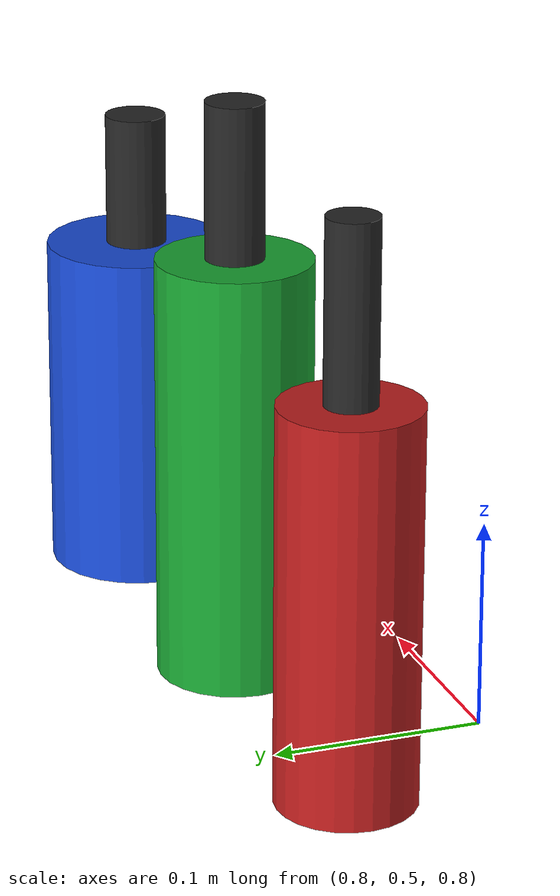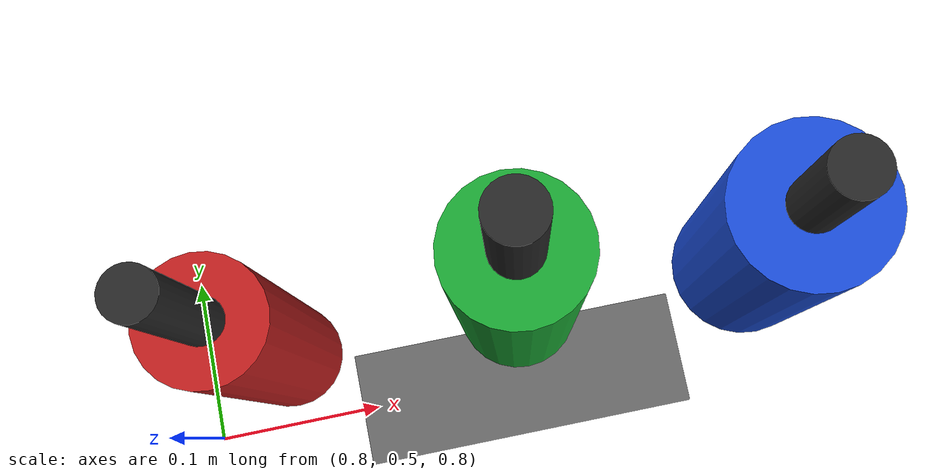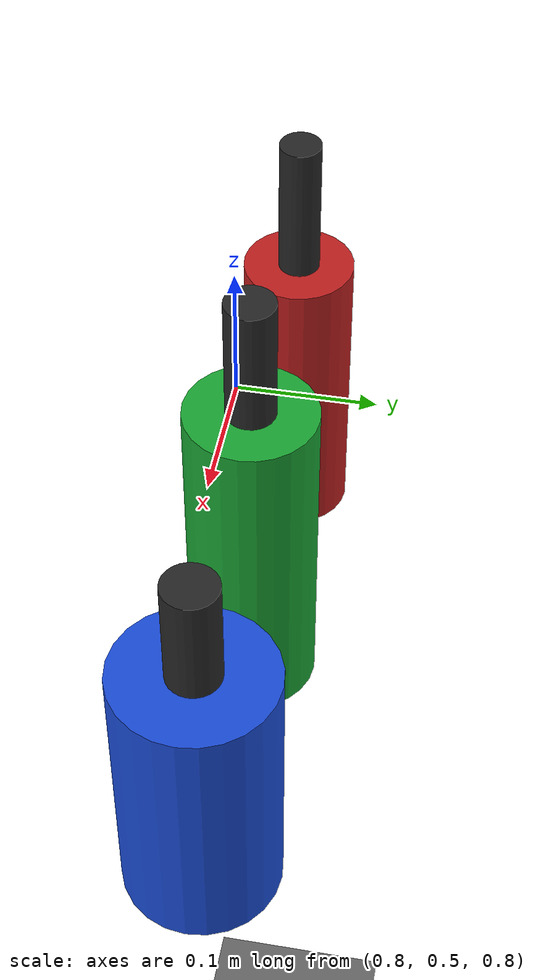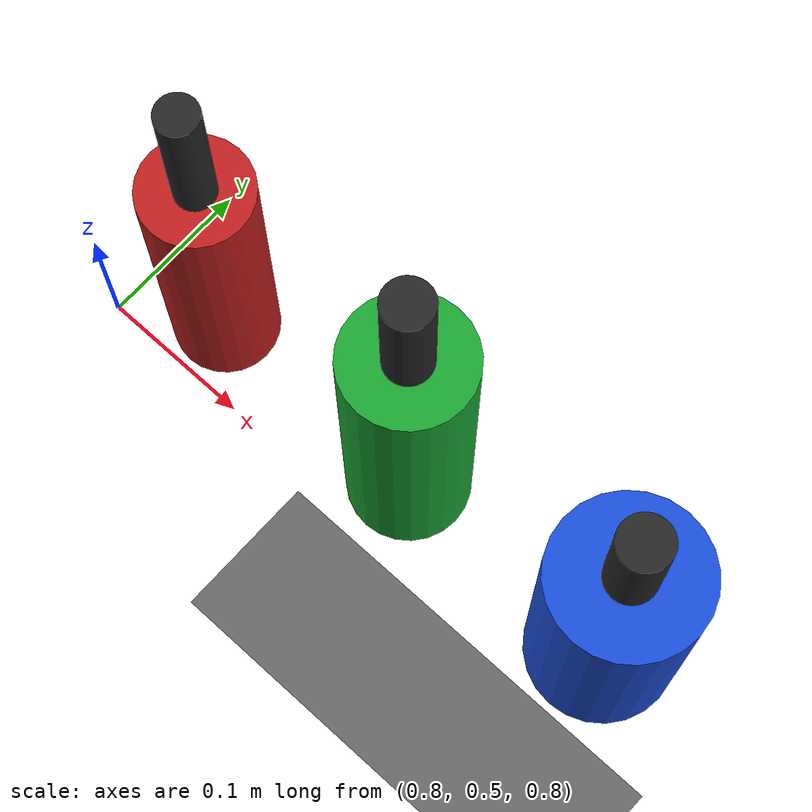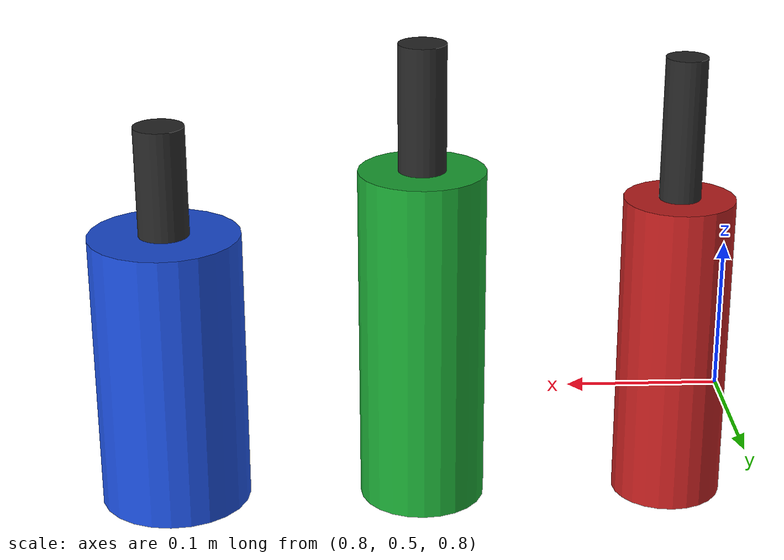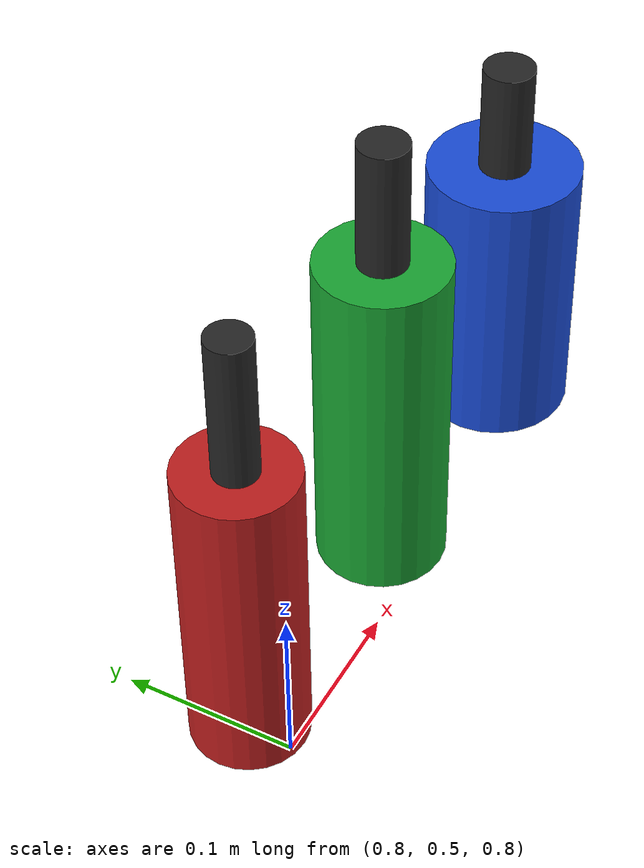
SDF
<sdf version="1.9">
 <world name="workcell_world">
  <physics name="1ms" type="ignored">
   <max_step_size>0.001</max_step_size>
   <real_time_factor>1.0</real_time_factor>
   <dart><collision_detector>bullet</collision_detector></dart>
  </physics>
  <plugin filename="gz-sim-physics-system" name="gz::sim::systems::Physics"/>
  <plugin filename="gz-sim-user-commands-system" name="gz::sim::systems::UserCommands"/>
  <plugin filename="gz-sim-scene-broadcaster-system" name="gz::sim::systems::SceneBroadcaster"/>
  <plugin filename="gz-sim-sensors-system" name="gz::sim::systems::Sensors">
   <render_engine>ogre2</render_engine>
  </plugin>
  <plugin filename="gz-sim-contact-system" name="gz::sim::systems::Contact"/>
  <light type="directional" name="sun">
   <cast_shadows>false</cast_shadows>
   <pose>0 0 10 0 0 0</pose>
   <diffuse>0.8 0.8 0.8 1</diffuse>
   <specular>0.2 0.2 0.2 1</specular>
   <attenuation>
    <range>1000</range>
    <constant>0.9</constant>
    <linear>0.01</linear>
    <quadratic>0.001</quadratic>
   </attenuation>
   <direction>-0.5 0.1 -0.9</direction>
  </light>
  <model name="ground_plane">
   <static>true</static>
   <link name="link">
    <collision name="collision">
     <geometry><plane><normal>0 0 1</normal><size>100 100</size></plane></geometry>
    </collision>
    <visual name="visual">
     <geometry><plane><normal>0 0 1</normal><size>100 100</size></plane></geometry>
     <material><ambient>0.3 0.3 0.3 1</ambient><diffuse>0.4 0.4 0.4 1</diffuse></material>
    </visual>
   </link>
  </model>
  <model name="overhead_camera">
   <static>true</static>
   <pose>0.84 0.42 1.85 0 1.5708 1.5708</pose>
   <link name="link">
    <sensor name="overhead_rgb" type="camera">
     <always_on>true</always_on>
     <update_rate>10</update_rate>
     <topic>/camera/overhead/image_raw</topic>
     <camera>
      <horizontal_fov>1.2566</horizontal_fov>
      <image><width>640</width><height>480</height><format>R8G8B8</format></image>
      <clip><near>0.2</near><far>3</far></clip>
     </camera>
    </sensor>
   </link>
  </model>
  <model name="side_camera">
   <static>true</static>
   <pose>0.55 -0.35 1.3 0 0.4538 1.2311</pose>
   <link name="link">
    <sensor name="side_rgb" type="camera">
     <always_on>true</always_on>
     <update_rate>10</update_rate>
     <topic>/camera/side/image_raw</topic>
     <camera>
      <horizontal_fov>1.2</horizontal_fov>
      <image><width>640</width><height>480</height><format>R8G8B8</format></image>
      <clip><near>0.2</near><far>5</far></clip>
     </camera>
    </sensor>
   </link>
  </model>
  <include><uri>model://debug_bottle_red</uri><name>bottle_3</name><pose>0.84 0.55 0.75 0 0 0</pose></include>
  <include><uri>model://debug_bottle_green</uri><name>bottle_4</name><pose>1 0.55 0.75 0 0 0</pose></include>
  <include><uri>model://debug_bottle_blue</uri><name>bottle_5</name><pose>1.16 0.55 0.75 0 0 0</pose></include>
 </world>
</sdf>

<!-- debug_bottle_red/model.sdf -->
<!-- GENERATED by bartender_gazebo/scripts/make_bartender_scene.py; tall slim debug bottle.
     Edit the generator, not this file. Colors are debug aids only. -->
<sdf version="1.9">
  <model name="debug_bottle_red">
    <!-- Link origin is the centre of the bottle's base, like the whiskey
         and cola models, so a standing pose is always z = table top. -->
    <link name="body">
      <inertial>
        <pose>0 0 0.1 0 0 0</pose>
        <mass>0.45</mass>
        <inertia>
          <ixx>1.637813e-03</ixx>
          <iyy>1.637813e-03</iyy>
          <izz>2.756250e-04</izz>
          <ixy>0</ixy>
          <ixz>0</ixz>
          <iyz>0</iyz>
        </inertia>
      </inertial>
      <collision name="body_collision">
        <pose>0 0 0.1 0 0 0</pose>
        <geometry>
          <cylinder>
            <radius>0.035</radius>
            <length>0.2</length>
          </cylinder>
        </geometry>
        <surface>
          <friction>
            <ode>
              <mu>0.9</mu>
              <mu2>0.9</mu2>
            </ode>
          </friction>
        </surface>
      </collision>
      <visual name="body_visual">
        <pose>0 0 0.1 0 0 0</pose>
        <geometry>
          <cylinder>
            <radius>0.035</radius>
            <length>0.2</length>
          </cylinder>
        </geometry>
        <material>
          <ambient>0.75 0.12 0.12 1</ambient>
          <diffuse>0.75 0.12 0.12 1</diffuse>
          <specular>0.2 0.2 0.2 0.3</specular>
        </material>
      </visual>
      <collision name="neck_collision">
        <pose>0 0 0.245 0 0 0</pose>
        <geometry>
          <cylinder>
            <radius>0.013</radius>
            <length>0.09</length>
          </cylinder>
        </geometry>
        <surface>
          <friction>
            <ode>
              <mu>0.9</mu>
              <mu2>0.9</mu2>
            </ode>
          </friction>
        </surface>
      </collision>
      <visual name="neck_visual">
        <pose>0 0 0.245 0 0 0</pose>
        <geometry>
          <cylinder>
            <radius>0.013</radius>
            <length>0.09</length>
          </cylinder>
        </geometry>
        <material>
          <ambient>0.15 0.15 0.15 1</ambient>
          <diffuse>0.15 0.15 0.15 1</diffuse>
          <specular>0.3 0.3 0.3 0.3</specular>
        </material>
      </visual>
    </link>
  </model>
</sdf>

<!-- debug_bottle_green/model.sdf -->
<!-- GENERATED by bartender_gazebo/scripts/make_bartender_scene.py; standard debug bottle.
     Edit the generator, not this file. Colors are debug aids only. -->
<sdf version="1.9">
  <model name="debug_bottle_green">
    <!-- Link origin is the centre of the bottle's base, like the whiskey
         and cola models, so a standing pose is always z = table top. -->
    <link name="body">
      <inertial>
        <pose>0 0 0.11 0 0 0</pose>
        <mass>0.6</mass>
        <inertia>
          <ixx>2.660000e-03</ixx>
          <iyy>2.660000e-03</iyy>
          <izz>4.800000e-04</izz>
          <ixy>0</ixy>
          <ixz>0</ixz>
          <iyz>0</iyz>
        </inertia>
      </inertial>
      <collision name="body_collision">
        <pose>0 0 0.11 0 0 0</pose>
        <geometry>
          <cylinder>
            <radius>0.04</radius>
            <length>0.22</length>
          </cylinder>
        </geometry>
        <surface>
          <friction>
            <ode>
              <mu>0.9</mu>
              <mu2>0.9</mu2>
            </ode>
          </friction>
        </surface>
      </collision>
      <visual name="body_visual">
        <pose>0 0 0.11 0 0 0</pose>
        <geometry>
          <cylinder>
            <radius>0.04</radius>
            <length>0.22</length>
          </cylinder>
        </geometry>
        <material>
          <ambient>0.1 0.65 0.2 1</ambient>
          <diffuse>0.1 0.65 0.2 1</diffuse>
          <specular>0.2 0.2 0.2 0.3</specular>
        </material>
      </visual>
      <collision name="neck_collision">
        <pose>0 0 0.26 0 0 0</pose>
        <geometry>
          <cylinder>
            <radius>0.015</radius>
            <length>0.08</length>
          </cylinder>
        </geometry>
        <surface>
          <friction>
            <ode>
              <mu>0.9</mu>
              <mu2>0.9</mu2>
            </ode>
          </friction>
        </surface>
      </collision>
      <visual name="neck_visual">
        <pose>0 0 0.26 0 0 0</pose>
        <geometry>
          <cylinder>
            <radius>0.015</radius>
            <length>0.08</length>
          </cylinder>
        </geometry>
        <material>
          <ambient>0.15 0.15 0.15 1</ambient>
          <diffuse>0.15 0.15 0.15 1</diffuse>
          <specular>0.3 0.3 0.3 0.3</specular>
        </material>
      </visual>
    </link>
  </model>
</sdf>

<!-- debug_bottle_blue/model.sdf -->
<!-- GENERATED by bartender_gazebo/scripts/make_bartender_scene.py; stout debug bottle.
     Edit the generator, not this file. Colors are debug aids only. -->
<sdf version="1.9">
  <model name="debug_bottle_blue">
    <!-- Link origin is the centre of the bottle's base, like the whiskey
         and cola models, so a standing pose is always z = table top. -->
    <link name="body">
      <inertial>
        <pose>0 0 0.09 0 0 0</pose>
        <mass>0.85</mass>
        <inertia>
          <ixx>2.784600e-03</ixx>
          <iyy>2.784600e-03</iyy>
          <izz>9.792000e-04</izz>
          <ixy>0</ixy>
          <ixz>0</ixz>
          <iyz>0</iyz>
        </inertia>
      </inertial>
      <collision name="body_collision">
        <pose>0 0 0.09 0 0 0</pose>
        <geometry>
          <cylinder>
            <radius>0.048</radius>
            <length>0.18</length>
          </cylinder>
        </geometry>
        <surface>
          <friction>
            <ode>
              <mu>0.9</mu>
              <mu2>0.9</mu2>
            </ode>
          </friction>
        </surface>
      </collision>
      <visual name="body_visual">
        <pose>0 0 0.09 0 0 0</pose>
        <geometry>
          <cylinder>
            <radius>0.048</radius>
            <length>0.18</length>
          </cylinder>
        </geometry>
        <material>
          <ambient>0.1 0.3 0.85 1</ambient>
          <diffuse>0.1 0.3 0.85 1</diffuse>
          <specular>0.2 0.2 0.2 0.3</specular>
        </material>
      </visual>
      <collision name="neck_collision">
        <pose>0 0 0.215 0 0 0</pose>
        <geometry>
          <cylinder>
            <radius>0.016</radius>
            <length>0.07</length>
          </cylinder>
        </geometry>
        <surface>
          <friction>
            <ode>
              <mu>0.9</mu>
              <mu2>0.9</mu2>
            </ode>
          </friction>
        </surface>
      </collision>
      <visual name="neck_visual">
        <pose>0 0 0.215 0 0 0</pose>
        <geometry>
          <cylinder>
            <radius>0.016</radius>
            <length>0.07</length>
          </cylinder>
        </geometry>
        <material>
          <ambient>0.15 0.15 0.15 1</ambient>
          <diffuse>0.15 0.15 0.15 1</diffuse>
          <specular>0.3 0.3 0.3 0.3</specular>
        </material>
      </visual>
    </link>
  </model>
</sdf>
